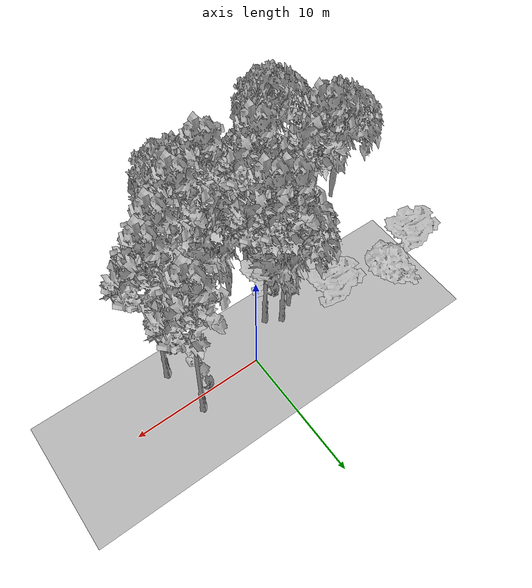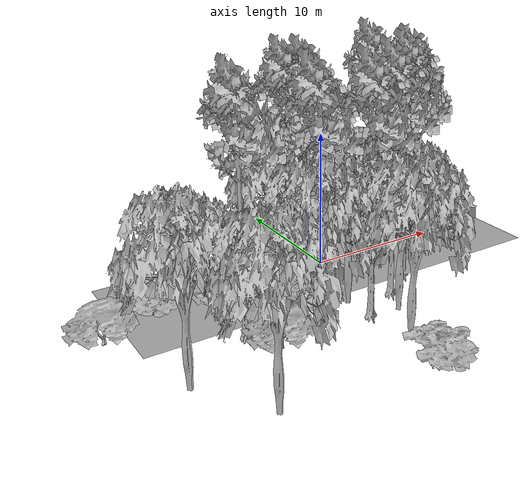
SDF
<sdf version="1.7">
 <world name="default">
  <model name="ground_plane">
   <static>1</static>
   <link name="link">
    <collision name="collision">
     <pose>-50 0 0 0 -0 0</pose>
     <geometry><plane><normal>0 0 1</normal><size>100 100</size></plane></geometry>
     <surface><contact><ode><min_depth>0.01</min_depth><max_vel>0</max_vel></ode></contact></surface>
    </collision>
    <visual name="grass">
     <cast_shadows>0</cast_shadows>
     <geometry>
      <mesh>
       <scale>0.5814285714285714 0.18142857142857144 0.1</scale>
       <uri>file://grass_plane/meshes/grass_plane.dae</uri>
      </mesh>
     </geometry>
    </visual>
   </link>
  </model>
  <model name="Tree 0">
   <static>1</static>
   <pose>-6.158259800889283 -8.98808349845068 0 1.57079 -0 0</pose>
   <link name="link">
    <collision name="collision">
     <geometry><mesh><scale>3.5 5 3.5</scale><uri>model://tree_2/meshes/tree_2.obj</uri></mesh></geometry>
    </collision>
    <visual name="visual">
     <geometry><mesh><scale>3.5 5 3.5</scale><uri>model://tree_2/meshes/tree_2.obj</uri></mesh></geometry>
    </visual>
   </link>
  </model>
  <model name="Tree 5">
   <static>1</static>
   <pose>4.440106754375051 -4.174271067530999 0 1.57079 -0 0</pose>
   <link name="link">
    <collision name="collision">
     <geometry><mesh><scale>3.5 5 3.5</scale><uri>model://tree_9/meshes/tree_9.obj</uri></mesh></geometry>
    </collision>
    <visual name="visual">
     <geometry><mesh><scale>3.5 5 3.5</scale><uri>model://tree_9/meshes/tree_9.obj</uri></mesh></geometry>
    </visual>
   </link>
  </model>
  <model name="Tree 22">
   <static>1</static>
   <pose>0.5068303792683722 -8.481424559732355 0 1.57079 -0 0</pose>
   <link name="link">
    <collision name="collision">
     <geometry><mesh><scale>3.5 5 3.5</scale><uri>model://tree_2/meshes/tree_2.obj</uri></mesh></geometry>
    </collision>
    <visual name="visual">
     <geometry><mesh><scale>3.5 5 3.5</scale><uri>model://tree_2/meshes/tree_2.obj</uri></mesh></geometry>
    </visual>
   </link>
  </model>
  <model name="Tree 24">
   <static>1</static>
   <pose>-11.590597687950584 -13.634750835188747 0 1.57079 -0 0</pose>
   <link name="link">
    <collision name="collision">
     <geometry><mesh><scale>3.5 5 3.5</scale><uri>model://tree_2/meshes/tree_2.obj</uri></mesh></geometry>
    </collision>
    <visual name="visual">
     <geometry><mesh><scale>3.5 5 3.5</scale><uri>model://tree_2/meshes/tree_2.obj</uri></mesh></geometry>
    </visual>
   </link>
  </model>
  <model name="Tree 25">
   <static>1</static>
   <pose>-2.526162246297069 -2.372710406290759 0 1.57079 -0 0</pose>
   <link name="link">
    <collision name="collision">
     <geometry><mesh><scale>3.5 5 3.5</scale><uri>model://tree_9/meshes/tree_9.obj</uri></mesh></geometry>
    </collision>
    <visual name="visual">
     <geometry><mesh><scale>3.5 5 3.5</scale><uri>model://tree_9/meshes/tree_9.obj</uri></mesh></geometry>
    </visual>
   </link>
  </model>
  <model name="Tree 32">
   <static>1</static>
   <pose>-5.078672200318167 -5.466062343714581 0 1.57079 -0 0</pose>
   <link name="link">
    <collision name="collision">
     <geometry><mesh><scale>3 2 3</scale><uri>model://tree_3/meshes/tree_3.obj</uri></mesh></geometry>
    </collision>
    <visual name="visual">
     <geometry><mesh><scale>3 2 3</scale><uri>model://tree_3/meshes/tree_3.obj</uri></mesh></geometry>
    </visual>
   </link>
  </model>
  <model name="Tree 37">
   <static>1</static>
   <pose>-8.184124486246354 -8.223530742062346 0 1.57079 -0 0</pose>
   <link name="link">
    <collision name="collision">
     <geometry><mesh><scale>3 2 3</scale><uri>model://tree_3/meshes/tree_3.obj</uri></mesh></geometry>
    </collision>
    <visual name="visual">
     <geometry><mesh><scale>3 2 3</scale><uri>model://tree_3/meshes/tree_3.obj</uri></mesh></geometry>
    </visual>
   </link>
  </model>
  <model name="Tree 51">
   <static>1</static>
   <pose>-1.7743517588591473 -5.931650518404787 0 1.57079 -0 0</pose>
   <link name="link">
    <collision name="collision">
     <geometry><mesh><scale>3.5 5 3.5</scale><uri>model://tree_2/meshes/tree_2.obj</uri></mesh></geometry>
    </collision>
    <visual name="visual">
     <geometry><mesh><scale>3.5 5 3.5</scale><uri>model://tree_2/meshes/tree_2.obj</uri></mesh></geometry>
    </visual>
   </link>
  </model>
  <model name="Tree 56">
   <static>1</static>
   <pose>5.230063578412455 0.9020688472201179 0 1.57079 -0 0</pose>
   <link name="link">
    <collision name="collision">
     <geometry><mesh><scale>3.5 5 3.5</scale><uri>model://tree_9/meshes/tree_9.obj</uri></mesh></geometry>
    </collision>
    <visual name="visual">
     <geometry><mesh><scale>3.5 5 3.5</scale><uri>model://tree_9/meshes/tree_9.obj</uri></mesh></geometry>
    </visual>
   </link>
  </model>
  <model name="Tree 63">
   <static>1</static>
   <pose>-1.0149084392214078 -11.572216341253888 0 1.57079 -0 0</pose>
   <link name="link">
    <collision name="collision">
     <geometry><mesh><scale>3.5 5 3.5</scale><uri>model://tree_2/meshes/tree_2.obj</uri></mesh></geometry>
    </collision>
    <visual name="visual">
     <geometry><mesh><scale>3.5 5 3.5</scale><uri>model://tree_2/meshes/tree_2.obj</uri></mesh></geometry>
    </visual>
   </link>
  </model>
  <model name="Tree 72">
   <static>1</static>
   <pose>-1.5053740062221266 -14.823072997043349 0 1.57079 -0 0</pose>
   <link name="link">
    <collision name="collision">
     <geometry><mesh><scale>4 2.5 4</scale><uri>model://tree_1/meshes/tree_1.obj</uri></mesh></geometry>
    </collision>
    <visual name="visual">
     <geometry><mesh><scale>4 2.5 4</scale><uri>model://tree_1/meshes/tree_1.obj</uri></mesh></geometry>
    </visual>
   </link>
  </model>
  <model name="Tree 73">
   <static>1</static>
   <pose>-9.2063776476734 -5.541820742819789 0 1.57079 -0 0</pose>
   <link name="link">
    <collision name="collision">
     <geometry><mesh><scale>3.5 5 3.5</scale><uri>model://tree_9/meshes/tree_9.obj</uri></mesh></geometry>
    </collision>
    <visual name="visual">
     <geometry><mesh><scale>3.5 5 3.5</scale><uri>model://tree_9/meshes/tree_9.obj</uri></mesh></geometry>
    </visual>
   </link>
  </model>
  <model name="Tree 78">
   <static>1</static>
   <pose>-4.963246851853242 -2.4932796219714035 0 1.57079 -0 0</pose>
   <link name="link">
    <collision name="collision">
     <geometry><mesh><scale>3.5 5 3.5</scale><uri>model://tree_2/meshes/tree_2.obj</uri></mesh></geometry>
    </collision>
    <visual name="visual">
     <geometry><mesh><scale>3.5 5 3.5</scale><uri>model://tree_2/meshes/tree_2.obj</uri></mesh></geometry>
    </visual>
   </link>
  </model>
  <model name="Tree 92">
   <static>1</static>
   <pose>-13.34467274861342 -0.09199819451738733 0 1.57079 -0 0</pose>
   <link name="link">
    <collision name="collision">
     <geometry><mesh><scale>4 2.5 4</scale><uri>model://tree_1/meshes/tree_1.obj</uri></mesh></geometry>
    </collision>
    <visual name="visual">
     <geometry><mesh><scale>4 2.5 4</scale><uri>model://tree_1/meshes/tree_1.obj</uri></mesh></geometry>
    </visual>
   </link>
  </model>
  <model name="Tree 98">
   <static>1</static>
   <pose>-4.514896271077546 -6.594838861201538 0 1.57079 -0 0</pose>
   <link name="link">
    <collision name="collision">
     <geometry><mesh><scale>3.5 5 3.5</scale><uri>model://tree_9/meshes/tree_9.obj</uri></mesh></geometry>
    </collision>
    <visual name="visual">
     <geometry><mesh><scale>3.5 5 3.5</scale><uri>model://tree_9/meshes/tree_9.obj</uri></mesh></geometry>
    </visual>
   </link>
  </model>
  <model name="Tree 115">
   <static>1</static>
   <pose>-3.630742942891885 -1.7036149108700513 0 1.57079 -0 0</pose>
   <link name="link">
    <collision name="collision">
     <geometry><mesh><scale>3.5 5 3.5</scale><uri>model://tree_9/meshes/tree_9.obj</uri></mesh></geometry>
    </collision>
    <visual name="visual">
     <geometry><mesh><scale>3.5 5 3.5</scale><uri>model://tree_9/meshes/tree_9.obj</uri></mesh></geometry>
    </visual>
   </link>
  </model>
  <model name="Tree 126">
   <static>1</static>
   <pose>1.9228420817351974 -5.945753471817946 0 1.57079 -0 0</pose>
   <link name="link">
    <collision name="collision">
     <geometry><mesh><scale>3.5 5 3.5</scale><uri>model://tree_9/meshes/tree_9.obj</uri></mesh></geometry>
    </collision>
    <visual name="visual">
     <geometry><mesh><scale>3.5 5 3.5</scale><uri>model://tree_9/meshes/tree_9.obj</uri></mesh></geometry>
    </visual>
   </link>
  </model>
  <model name="Tree 136">
   <static>1</static>
   <pose>5.88006873018719 -2.7946750001700043 0 1.57079 -0 0</pose>
   <link name="link">
    <collision name="collision">
     <geometry><mesh><scale>3.5 5 3.5</scale><uri>model://tree_9/meshes/tree_9.obj</uri></mesh></geometry>
    </collision>
    <visual name="visual">
     <geometry><mesh><scale>3.5 5 3.5</scale><uri>model://tree_9/meshes/tree_9.obj</uri></mesh></geometry>
    </visual>
   </link>
  </model>
  <model name="Tree 148">
   <static>1</static>
   <pose>-1.0856618278271526 -7.660041016225079 0 1.57079 -0 0</pose>
   <link name="link">
    <collision name="collision">
     <geometry><mesh><scale>3.5 5 3.5</scale><uri>model://tree_9/meshes/tree_9.obj</uri></mesh></geometry>
    </collision>
    <visual name="visual">
     <geometry><mesh><scale>3.5 5 3.5</scale><uri>model://tree_9/meshes/tree_9.obj</uri></mesh></geometry>
    </visual>
   </link>
  </model>
  <model name="Tree 151">
   <static>1</static>
   <pose>-4.684161197976103 -7.807700655950032 0 1.57079 -0 0</pose>
   <link name="link">
    <collision name="collision">
     <geometry><mesh><scale>3.5 5 3.5</scale><uri>model://tree_2/meshes/tree_2.obj</uri></mesh></geometry>
    </collision>
    <visual name="visual">
     <geometry><mesh><scale>3.5 5 3.5</scale><uri>model://tree_2/meshes/tree_2.obj</uri></mesh></geometry>
    </visual>
   </link>
  </model>
  <model name="Tree 156">
   <static>1</static>
   <pose>-8.753497081924124 -1.6893393637186414 0 1.57079 -0 0</pose>
   <link name="link">
    <collision name="collision">
     <geometry><mesh><scale>3 2 3</scale><uri>model://tree_3/meshes/tree_3.obj</uri></mesh></geometry>
    </collision>
    <visual name="visual">
     <geometry><mesh><scale>3 2 3</scale><uri>model://tree_3/meshes/tree_3.obj</uri></mesh></geometry>
    </visual>
   </link>
  </model>
  <model name="Tree 158">
   <static>1</static>
   <pose>-17.089294985039 -1.9675041861382887 0 1.57079 -0 0</pose>
   <link name="link">
    <collision name="collision">
     <geometry><mesh><scale>3 2 3</scale><uri>model://tree_3/meshes/tree_3.obj</uri></mesh></geometry>
    </collision>
    <visual name="visual">
     <geometry><mesh><scale>3 2 3</scale><uri>model://tree_3/meshes/tree_3.obj</uri></mesh></geometry>
    </visual>
   </link>
  </model>
  <model name="Tree 179">
   <static>1</static>
   <pose>-14.685280387713576 -9.132206435582018 0 1.57079 -0 0</pose>
   <link name="link">
    <collision name="collision">
     <geometry><mesh><scale>3.5 5 3.5</scale><uri>model://tree_2/meshes/tree_2.obj</uri></mesh></geometry>
    </collision>
    <visual name="visual">
     <geometry><mesh><scale>3.5 5 3.5</scale><uri>model://tree_2/meshes/tree_2.obj</uri></mesh></geometry>
    </visual>
   </link>
  </model>
 </world>
</sdf>
